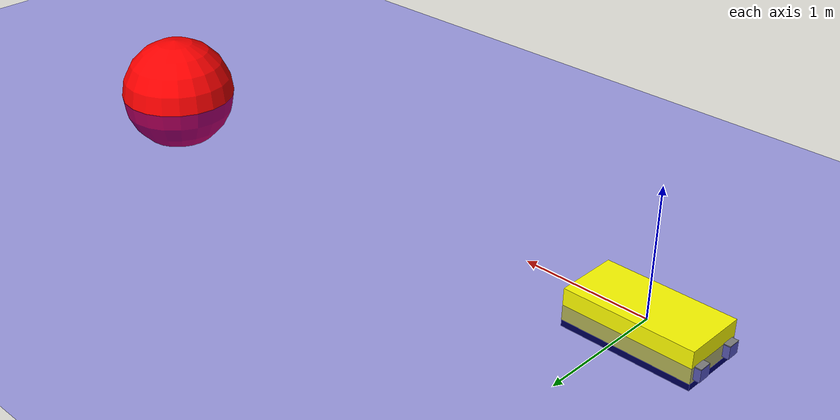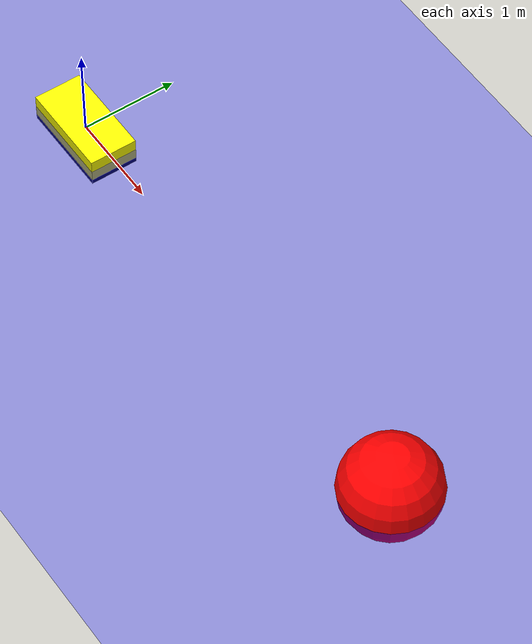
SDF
<?xml version="1.0"?>
<sdf version="1.7">

    <world name="my_world">
        <scene>
            <ambient>0.0 1.0 1.0</ambient>
            <background>0 0.7 0.8</background>
        </scene>
        <light type="directional" name="sun">
            <cast_shadows>true</cast_shadows>
            <pose>0 0 10 0 0 0</pose>
            <diffuse>1 1 1 1</diffuse>
            <specular>0.5 0.5 0.5 1</specular>
            <attenuation>
                <range>1000</range>
                <constant>0.9</constant>
                <linear>0.01</linear>
                <quadratic>0.001</quadratic>
            </attenuation>
            <direction>-0.5 0.1 -0.9</direction>
        </light>
        <physics name="1ms" type="ode">
            <max_step_size>0.001</max_step_size>
            <real_time_factor>1.0</real_time_factor>
        </physics>
        <plugin filename="ignition-gazebo-physics-system" name="ignition::gazebo::systems::Physics" />
        <plugin filename="ignition-gazebo-user-commands-system" name="ignition::gazebo::systems::UserCommands" />
        <plugin filename="ignition-gazebo-scene-broadcaster-system" name="ignition::gazebo::systems::SceneBroadcaster" />

        <!-- 부력 플러그인 -->
        <plugin filename="ignition-gazebo-buoyancy-system" name="ignition::gazebo::systems::Buoyancy">
            <graded_buoyancy>
                <default_density>1000</default_density>
                <density_change>
                    <above_depth>0</above_depth>
                    <density>1</density>
                </density_change>
            </graded_buoyancy>
        </plugin>

        <!-- 센서 플러그인 -->
        <plugin filename="ignition-gazebo-sensors-system" name="ignition::gazebo::systems::Sensors"/>

        <model name="water_plane">
            <static>true</static>
            <link name="link">
                <visual name="water_plane">
                    <geometry>
                        <plane>
                            <size>100 100</size>
                            <normal>0 0 1</normal>
                        </plane>
                    </geometry>
                    <material>
                        <ambient>0 0 1 0.7</ambient>
                        <diffuse>0 0 1 0.7</diffuse>
                        <specular>0 0 1 0.7</specular>
                    </material>
                </visual>
            </link>
        </model>

        <model name="box_usv">

            <link name="base_link">
                <collision name="collision">
                    <geometry>
                        <box>
                            <size> 1 0.5 0.25</size>
                        </box>
                    </geometry>
                </collision>
                <visual name="visual">
                    <geometry>
                        <box>
                            <size> 1 0.5 0.25</size>
                        </box>
                    </geometry>
                    <material>
                        <ambient>1 1 0 1</ambient>
                        <diffuse>1 1 0 1</diffuse>
                        <specular>1 1 0 1</specular>
                    </material>
                </visual>
                <inertial>
                    <mass>20</mass>
                    <!-- inertia : calculated by "omni calculator(web page), cuboid?"-->
                    <inertia>
                        <ixx>0.4333</ixx>
                        <ixy>0</ixy>
                        <ixz>0</ixz>
                        <iyy>1.6833</iyy>
                        <iyz>0</iyz>
                        <izz>2.0833</izz>
                    </inertia>
                </inertial>
            </link>

            <joint name="joint_camera" type="fixed">
                <pose>0 0 0 0 0 0</pose>
                <parent>base_link</parent>
                <child>camera_link</child>
            </joint>

            <link name="camera_link">
                <pose>0.5 0 0.125 0 1.57 0</pose>
                <sensor type="camera" name="my_sensor">
                    <pose>0 0 0 0 0 0</pose>
                    <camera>
                        <horizontal_fov>1.0</horizontal_fov>
                        <image>
                            <width>320</width>
                            <height>240</height>
                        </image>
                        <clip>
                            <near>0.1</near>
                            <far>100</far>
                        </clip>
                    </camera>
                    <topic>image</topic>
                    <always_on>1</always_on>
                    <update_rate>30</update_rate>
                    <visualize>false</visualize>
                </sensor>
                <inertial>
                    <mass>0.002</mass>
                    <inertia>
                        <ixx>0.00032375</ixx>
                        <ixy>0</ixy>
                        <ixz>0</ixz>
                        <iyy>0.0005469</iyy>
                        <iyz>0</iyz>
                        <izz>0.0006519</izz>
                    </inertia>
                </inertial>
            </link>

            <joint name="joint_propeller1" type="revolute">
                <pose>0 0 0 0 0 0</pose>
                <parent>base_link</parent>
                <child>thruster1</child>
                <axis>
                    <xyz>0 0 1</xyz>
                </axis>
            </joint>

            <link name="thruster1">
                <pose>-0.525 0.17 -0.05 0 1.57 0</pose>
                <visual name="visual">
                    <geometry>
                        <box>
                            <size>0.1 0.1 0.05</size>
                        </box>
                    </geometry>
                    <material>
                        <ambient>0.5 0.5 0.5 1</ambient>
                        <diffuse>0.5 0.5 0.5 1</diffuse>
                        <specular>0.5 0.5 0.5 1</specular>
                    </material>
                </visual>
                <inertial>
                    <mass>0.001</mass>
                    <inertia>
                        <ixx>0.00032375</ixx>
                        <ixy>0</ixy>
                        <ixz>0</ixz>
                        <iyy>0.0005469</iyy>
                        <iyz>0</iyz>
                        <izz>0.0006519</izz>
                    </inertia>
                </inertial>
            </link>

            <joint name="joint_propeller2" type="revolute">
                <pose>0 0 0 0 0 0</pose>
                <parent>base_link</parent>
                <child>thruster2</child>
                <axis>
                    <xyz>0 0 1</xyz>
                </axis>
            </joint>

            <link name="thruster2">
                <pose>-0.525 -0.17 -0.05 0 1.57 0</pose>
                <visual name="visual">
                    <geometry>
                        <box>
                            <size>0.1 0.1 0.05</size>
                        </box>
                    </geometry>
                    <material>
                        <ambient>0.5 0.5 0.5 1</ambient>
                        <diffuse>0.5 0.5 0.5 1</diffuse>
                        <specular>0.5 0.5 0.5 1</specular>
                    </material>
                </visual>
                <inertial>
                    <mass>0.001</mass>
                    <inertia>
                        <ixx>0.0005469</ixx>
                        <ixy>0</ixy>
                        <ixz>0</ixz>
                        <iyy>0.0005469</iyy>
                        <iyz>0</iyz>
                        <izz>0.000875</izz>
                    </inertia>
                </inertial>
            </link>

            <!-- Hydrodynamics plugin -->
            <plugin filename="ignition-gazebo-hydrodynamics-system" name="ignition::gazebo::systems::Hydrodynamics">
                <link_name>base_link</link_name>
                <xDotU>-0.04876161</xDotU>
                <yDotV>-1.26324739</yDotV>
                <zDotW>-1.26324739</zDotW>
                <kDotP>0</kDotP>
                <mDotQ>-0.3346</mDotQ>
                <nDotR>-0.3346</nDotR>
                <xUabsU>-0.62282</xUabsU>
                <xU>-5</xU>
                <yVabsV>-60.127</yVabsV>
                <yV>-5</yV>
                <zWabsW>-6.0127</zWabsW>
                <zW>-100</zW>
                <kPabsP>-0.001916</kPabsP>
                <kP>-1</kP>
                <mQabsQ>-6.32698957</mQabsQ>
                <mQ>-1</mQ>
                <nRabsR>-6.32698957</nRabsR>
                <nR>-1</nR>
            </plugin>
            <!-- Thruster plugin -->
            <plugin filename="ignition-gazebo-thruster-system" name="ignition::gazebo::systems::Thruster">
                <joint_name>joint_propeller1</joint_name>
                <namespace>box_usv</namespace>
                <topic>thrust1</topic>
                <thrust_coefficient>0.001</thrust_coefficient>
                <fluid_density>1000</fluid_density>
                <propeller_diameter>0.4</propeller_diameter>
            </plugin>

            <plugin filename="ignition-gazebo-thruster-system" name="ignition::gazebo::systems::Thruster">
                <joint_name>joint_propeller2</joint_name>
                <namespace>box_usv</namespace>
                <topic>thrust2</topic>
                <thrust_coefficient>0.001</thrust_coefficient>
                <fluid_density>1000</fluid_density>
                <propeller_diameter>0.4</propeller_diameter>
            </plugin>

            <link name="virtual_mass1">
                <pose>0 0 -0.15 0 0 0</pose>
                <collision name="virtual_mass1_collision">
                    <geometry>
                        <box>
                            <size>1.0 0.5 0.05</size>
                        </box>
                    </geometry>
                    <surface>
                        <contact>
                            <collide_without_contact>true</collide_without_contact>
                        </contact>
                    </surface>
                </collision>
                <visual name="virtual_mass1_visual">
                    <geometry>
                        <box>
                            <size>1 0.5 0.05</size>
                        </box>
                    </geometry>
                    <material>
                        <ambient>0 0 0 1</ambient>
                        <diffuse>0 0 0 1</diffuse>
                        <specular>0 0 0 1</specular>
                        <transparency>1.0</transparency>
                    </material>
                </visual>
                <inertial>
                    <mass>80</mass>
                    <inertia>
                        <ixx>2.4167</ixx>
                        <ixy>0</ixy>
                        <ixz>0</ixz>
                        <iyy>8.667</iyy>
                        <iyz>0</iyz>
                        <izz>10.417</izz>
                    </inertia>
                </inertial>
            </link>

            <joint name="virtual_mass1_fixed" type="fixed">
                <parent>base_link</parent>
                <child>virtual_mass1</child>
                <pose>0 0 0 0 0 0</pose>
            </joint>

        </model>
        <!-- Obstacle -->
        <model name="obstacle">
            <static>true</static>
            <pose>5 0 0 0 0 0</pose>
            <link name="base_link">
                <visual name="obstacle">
                    <geometry>
                        <sphere>
                            <radius>0.5</radius>
                        </sphere>
                    </geometry>
                    <material>
                        <ambient>1 0 0 1</ambient>
                        <diffuse>1 0 0 1</diffuse>
                        <specular>1 0 0 1</specular>
                    </material>
                </visual>
            </link>
        </model>

    </world>
</sdf>
